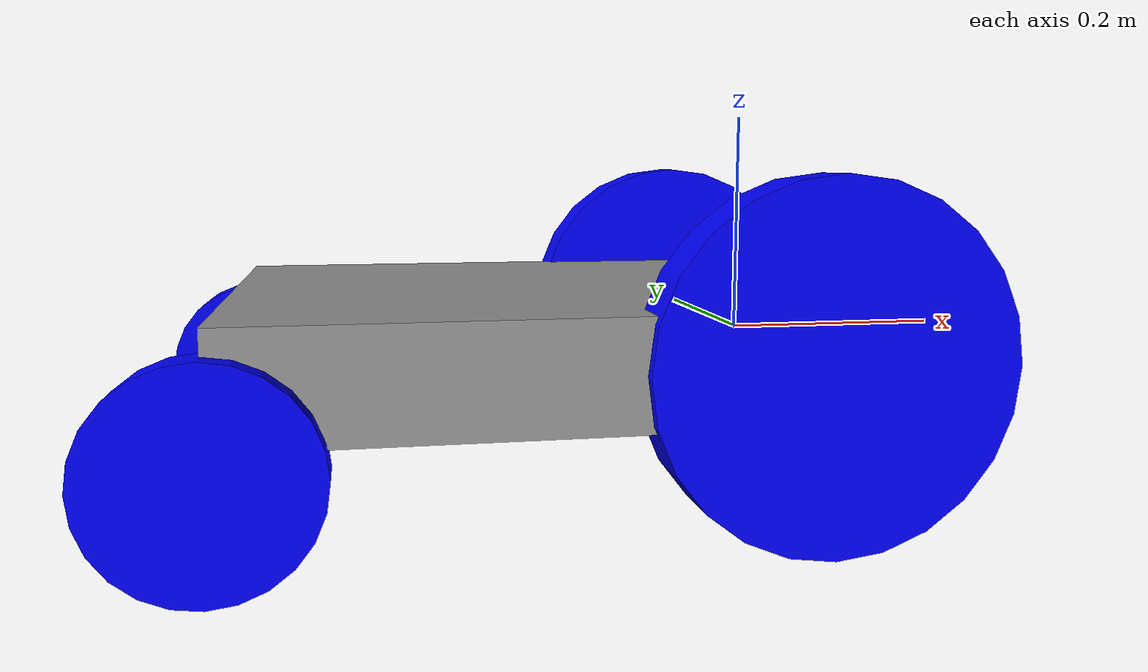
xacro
<?xml version="1.0"?>
<robot name="cobot_mapping" xmlns:xacro="http://ros.org/wiki/xacro">

 <xacro:include filename="$(find cobot_description)/urdf/cobot_library.urdf.xacro" />
 <xacro:include filename="$(find cobot_description)/urdf/constants.urdf.xacro" />

 <cobot_base />

</robot>

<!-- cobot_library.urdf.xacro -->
<!--
  Library, this includes all 'loose' urdf and xacro files of cobot.
 -->
<robot name="library" xmlns:xacro="http://ros.org/wiki/xacro">

  <!-- ### Materials ### -->

  <!--
    Material constants of the robot(like colors)
  -->
  <xacro:include filename="$(find cobot_description)/urdf/materials/materials.urdf.xacro"/>

  <!-- ### Platform ### -->

  <!--
    Base (Platform) of the robot
  -->
  <xacro:include filename="$(find cobot_description)/urdf/platform/base.urdf.xacro"/>
  <!--
    Body of the robot
    @param parent_link name of the parent link
  -->
  <xacro:include filename="$(find cobot_description)/urdf/platform/body.urdf.xacro"/>
  <!--
    Top part of the robot
    @param parent_link name of the parent link
    @param height_offset z-distance relative to the parent link
  -->
  <xacro:include filename="$(find cobot_description)/urdf/platform/top.urdf.xacro"/>

  <!-- ### Sensors ### -->

  <xacro:include filename="$(find cobot_description)/urdf/sensors/kinect.urdf.xacro"/>
  <xacro:include filename="$(find cobot_description)/urdf/sensors/ultrasoon.urdf.xacro"/>

</robot>

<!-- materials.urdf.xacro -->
<!--
  Defines all the materials used
 -->
<robot name="xacro_materials" xmlns:xacro="http://ros.org/wiki/xacro">

  <material name="white">
    <color rgba="1 1 1 1"/>
  </material>

  <material name="grey">
    <color rgba="0.5 0.5 0.5 1"/>
  </material>

  <material name="light_grey">
    <color rgba="0.6 0.6 0.6 1"/>
  </material>

  <material name="dark_grey">
    <color rgba="0.3 0.3 0.3 1"/>
  </material>

  <material name="black">
    <color rgba="0.01 0.01 0.01 1"/>
  </material>

  <material name="red">
    <color rgba="1 0 0 1"/>
  </material>

  <material name="blue">
    <color rgba="0 0 1 1"/>
  </material>

  <material name="green">
    <color rgba="0 1 0 1"/>
  </material>

</robot>

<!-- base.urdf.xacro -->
<robot name="cobot_base"  xmlns:xacro="http://ros.org/wiki/xacro">

<!-- Combined macro's -->
  <xacro:macro name="cobot_base">

    <xacro:base_platform />
    <xacro:powered_wheel parent_link="base_link" side="left" mirror="1" />
    <xacro:powered_wheel parent_link="base_link" side="right" mirror="-1" />
    <xacro:caster_wheel parent_link="base_link" side="left" mirror="1" />
    <xacro:caster_wheel parent_link="base_link" side="right" mirror="-1" />

  </xacro:macro>

  <xacro:include filename="$(find cobot_description)/urdf/constants.urdf.xacro" />

  <xacro:property name="platform_length" value="0.57" />
  <xacro:property name="platform_width" value="0.46" />
  <xacro:property name="platform_height" value="0.09" />

  <xacro:property name="center_wheel_axis_to_front_platform_distance" value="0.1" />

  <xacro:property name="powered_wheel_diameter" value="0.3" />
  <xacro:property name="powered_wheel_thickness" value="0.05" />
  <xacro:property name="powered_wheel_spacing" value="0.015" />

  <xacro:property name="caster_wheel_diameter" value="0.175" />
  <xacro:property name="caster_wheel_thickness" value="0.04" />

    <xacro:macro name="powered_wheel" params="parent_link side mirror">
      <link name="powered_${side}_wheel_link">
        <visual>
          <origin xyz="0 0 0" rpy="${pi/2} 0 0" />
          <geometry>
            <cylinder radius="${powered_wheel_diameter/2.0}" length="${powered_wheel_thickness}"/>
          </geometry>
          <material name="blue" />
        </visual>
      </link>
    <xacro:powered_wheel_joint parent_link="${parent_link}" side="${side}" mirror="${mirror}" />
    </xacro:macro>

    <xacro:macro name="powered_wheel_joint" params="parent_link side mirror">
      <joint name="powered_${side}_wheel_joint" type="fixed">
        <parent link="${parent_link}"/>
        <child link="powered_${side}_wheel_link"/>
        <origin xyz="0 ${(platform_width/2.0)*mirror+powered_wheel_spacing} 0" rpy="0 0 0"/>
      </joint>
    </xacro:macro>

    <xacro:macro name="caster_wheel" params="parent_link side mirror">
      <link name="caster_${side}_wheel_link">
        <visual>
          <origin xyz="0 0 0" rpy="${pi/2} 0 0" />
          <geometry>
            <cylinder radius="${caster_wheel_diameter/2.0}" length="${caster_wheel_thickness}"/>
          </geometry>
          <material name="blue" />
        </visual>
      </link>
    <xacro:caster_wheel_joint parent_link="${parent_link}" side="${side}" mirror="${mirror}" />
    </xacro:macro>

    <xacro:macro name="caster_wheel_joint" params="parent_link side mirror">
      <joint name="caster_${side}_wheel_joint" type="fixed">
        <parent link="${parent_link}"/>
        <child link="caster_${side}_wheel_link"/>
        <origin xyz="${-platform_length+center_wheel_axis_to_front_platform_distance} ${(platform_width/2.0)*mirror} -${(powered_wheel_diameter/2.0)-(caster_wheel_diameter/2.0)}" rpy="0 0 0"/>
      </joint>
    </xacro:macro>

  <xacro:macro name="base_platform">

    <link name="base_link">
      <visual>
      <origin xyz="0 0 0" rpy="0 0 0" />
        <geometry>
          <box size=".02 ${platform_width} 0.01" />
        </geometry>
      </visual>
    </link>

    <link name="platform_link">
      <visual>
      <origin xyz="${platform_length/2.0} ${platform_width/2.0} -${platform_height/2.0}" rpy="0 0 0" />
        <geometry>
          <box size="${platform_length} ${platform_width} ${platform_height}" />
        </geometry>
          <material name="light_grey" />
      </visual>
    </link>
    <joint name="platform_joint" type="fixed">
      <parent link="base_link" />
      <child link="platform_link" />
      <origin xyz="${-platform_length+center_wheel_axis_to_front_platform_distance} -${platform_width/2.0} ${platform_height/2.0}" rpy="0 0 0" />
    </joint>

  </xacro:macro>

</robot>

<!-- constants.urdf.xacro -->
<!--
  Some handy constants
 -->
<robot name="constants" xmlns:xacro="http://ros.org/wiki/xacro">

  <xacro:property name="pi" value="3.1415" />

</robot>
